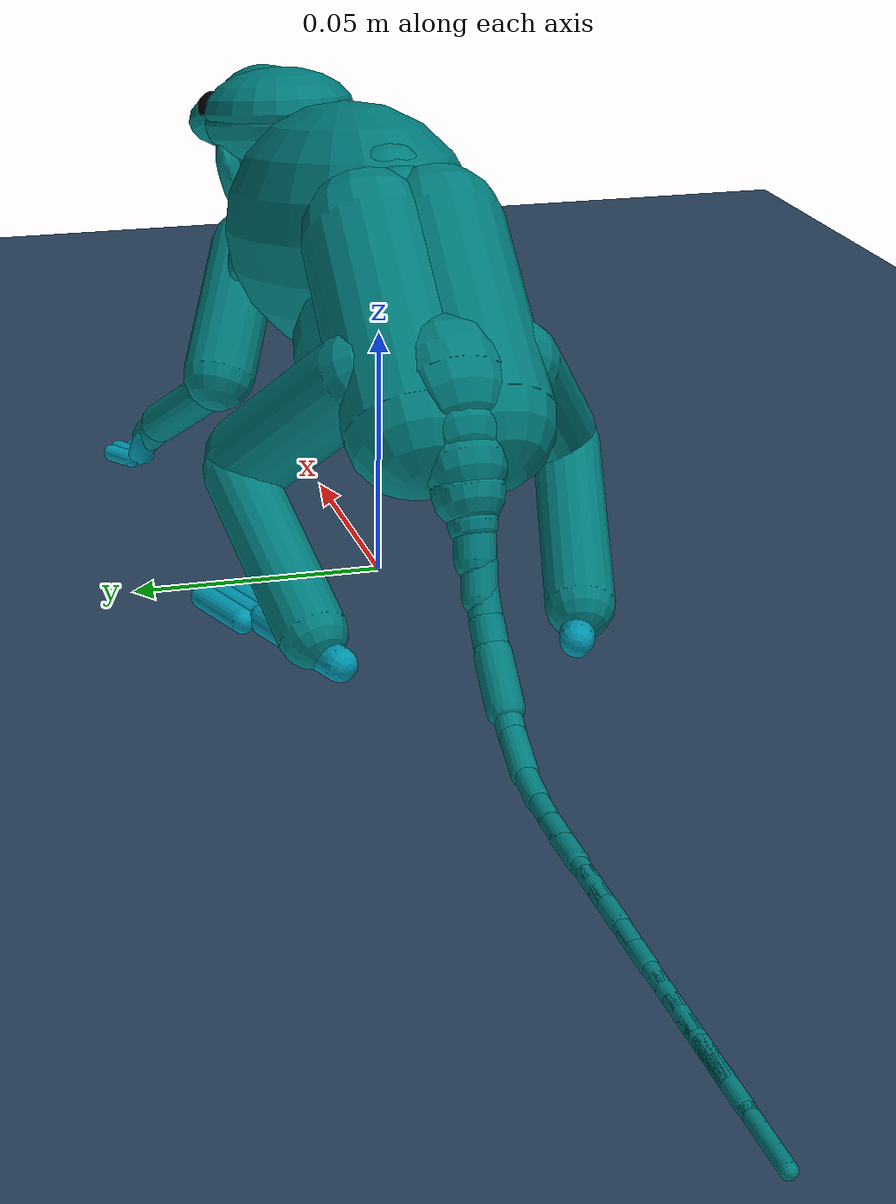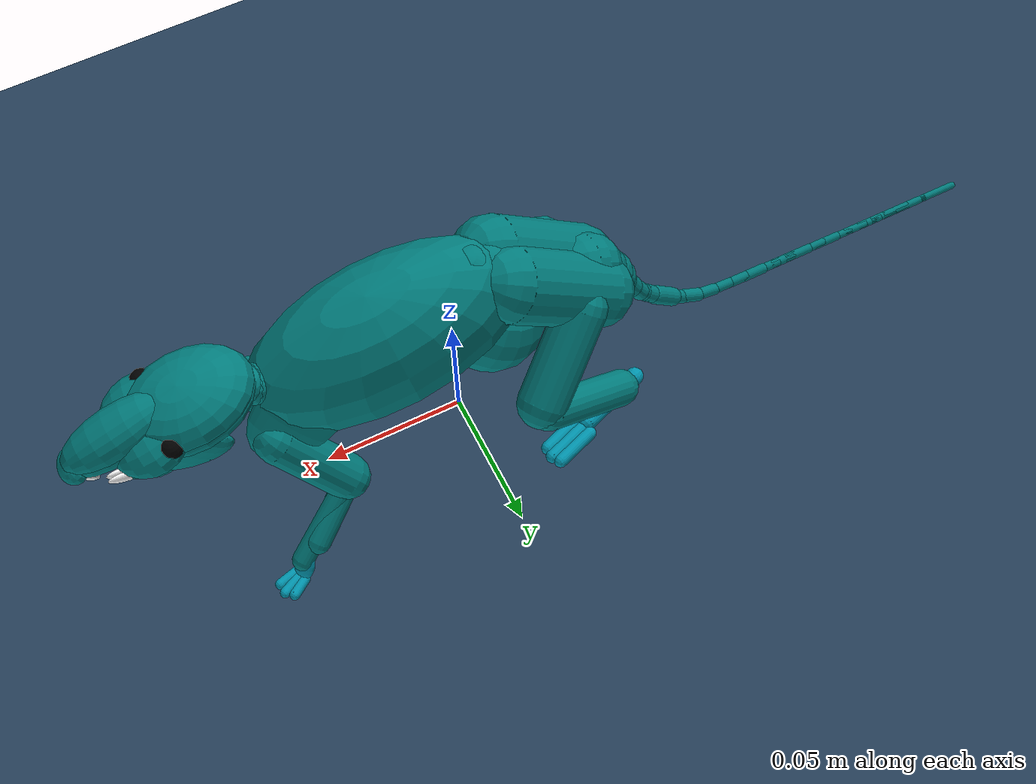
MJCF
<mujoco model="rat">
    <compiler angle="radian"/>
    <option timestep="0.002" solver="CG" iterations="16" ls_iterations="24"></option>
    <visual>
          <quality shadowsize="2048"/>
          <global offwidth="1920" offheight="1200" elevation="-20" azimuth="120"/>
        </visual>
    <default>
      <joint limited="true" solreflimit="0.01 1" solimplimit="0.99 0.9999 0.0001" armature="6e-07" damping="0.001"/>
      <geom friction="0.7 0.005 0.0001" solref="0.005 1"/>
      <site group="3" rgba="0 0 1 1"/>
      <general ctrllimited="true" ctrlrange="-1 1" forcelimited="false" gainprm="0.01"/>
      <default class="bone">
        <geom contype="0" conaffinity="0" group="0" rgba="0.5 0.5 0.5 1" density="1100.0"/>
      </default>
      <default class="collision">
        <geom contype="1" conaffinity="1" condim="1" group="2"/>
        <default class="collision_primitive">
          <geom type="capsule" group="2" rgba="0 0.5 0.5 1" density="500.0"/>
          <default class="collision_primitive_paw">
            <geom condim="3" priority="1" rgba="0 0.6 0.7 1" friction="1.5 0.005 0.0001"/>
          </default>
          <default class="nonself_collision_primitive">
            <geom contype="0" conaffinity="0"/>
          </default>
        </default>
      </default>
      <default class="collision_floor">
        <geom contype="0" conaffinity="1" condim="3"/>
      </default>
      <default class="atlas">
        <joint axis="0 -1 0" stiffness="0.002" range="-0.08726646259971647 0.7853981633974483" damping="0.002"/>
        <general gainprm="0.025"/>
      </default>
      <default class="mandible">
        <joint stiffness="0.002" range="-0.296705972839036 0.2617993877991494" springref="-0.314159265359" damping="0.002"/>
        <general gainprm="0.025"/>
      </default>
      <default class="hip">
        <joint armature="1e-05" damping="0.02"/>
        <general gainprm="0.2"/>
        <default class="hip_supinate">
          <joint range="-0.6981317007977318 0.5235987755982988"/>
        </default>
        <default class="hip_abduct">
          <joint range="-0.5235987755982988 1.047197551196598"/>
        </default>
        <default class="hip_extend">
          <joint range="-1.570796326794897 1.047197551196598"/>
          <general gainprm="0.3"/>
        </default>
      </default>
      <default class="knee">
        <joint range="-1.221730476396031 1.53588974175501" damping="0.005"/>
        <general gainprm="0.2"/>
      </default>
      <default class="ankle">
        <joint range="-0.1396263401595464 1.396263401595464" damping="0.003"/>
        <general gainprm="0.2"/>
      </default>
      <default class="toe">
        <joint range="0 0.8726646259971648" damping="0.001"/>
        <general gainprm="0.025"/>
      </default>
      <default class="scapula">
        <joint damping="0.005"/>
        <general gainprm="0.25"/>
        <default class="scapula_supinate">
          <joint pos="0 0.005000000000000001 0" range="-0.0174532925199433 0.1745329251994329"/>
        </default>
        <default class="scapula_abduct">
          <joint pos="0 0.005000000000000001 -0.01" range="-0.2617993877991494 0.2617993877991494"/>
        </default>
        <default class="scapula_extend">
          <joint pos="0 0 0" range="-0.03490658503988659 0.03490658503988659"/>
          <general gainprm="0.25"/>
        </default>
      </default>
      <default class="shoulder">
        <joint range="-1.308996938995747 0.8726646259971648" damping="0.005"/>
        <general gainprm="0.15"/>
      </default>
      <default class="shoulder_sup">
        <joint range="-0.05235987755982989 1.134464013796314" damping="0.005"/>
        <general gainprm="0.15"/>
      </default>
      <default class="elbow">
        <joint range="-1.308996938995747 0.6981317007977318" damping="0.003"/>
        <general gainprm="0.15"/>
      </default>
      <default class="wrist">
        <joint range="-0.3490658503988659 2.094395102393195" damping="0.002"/>
        <general gainprm="0.05"/>
      </default>
      <default class="finger">
        <joint range="0 1.570796326794897" damping="0.002"/>
        <general gainprm="0.025"/>
      </default>
      <default class="sensor">
        <site group="4"/>
      </default>
    </default>
    <visual>
      <quality shadowsize="2048"/>
    </visual>
    <statistic meansize="0.003"/>
    <asset>
      <texture name="grid" type="2d" builtin="checker" width="512" height="512" rgb1=".1 .2 .3" rgb2=".2 .3 .4"/>
      <material name="grid" texture="grid" texrepeat="1 1" texuniform="true" reflectance=".2"/>
    </asset>
    <worldbody>
      <geom name="floor" class="collision_floor" pos="0 0 -0.005" size="10 10 0.025" type="plane" material="grid"/>
      <body name="walker">
      <freejoint name="root"/>
      <body name="torso" pos="0.03099526054578288 2.058524937651458e-07 0.06508957263119967">
        <light name="tracking_light" mode="trackcom" pos="0 0 3"/>
        <camera name="close_profile" mode="trackcom" pos=".5 -.5 0.5" xyaxes="1 1 0 -1 1 2"/>
        <camera name="back" mode="trackcom" pos="-1 0 0.5" xyaxes="0 -1 0 1 0 2"/>
        <camera name="side" mode="trackcom" pos="0 -1 0.5" xyaxes="1 0 0 0 1 2"/>
        <camera name="side_alt" mode="trackcom" pos="0.5 -0.561 0.199" xyaxes="0.766 0.643 0.000 -0.162 0.192 0.968"/>
        <camera name="top" mode="trackcom" fovy="100.0" pos="0 0 1" zaxis="0 -0.2 1"/>
        <geom name="collision_torso" class="nonself_collision_primitive" type="ellipsoid" size="0.05 0.024 0.026" density="468.251260009" pos="-0.008200000000000001 0 0" euler="0 0.1745329251994329 0"/>
        <body name="vertebra_1" pos="-0.01917944366660853 -1.880335592758969e-07 0.01684645690649089">
          <geom name="vertebra_1_collision" class="nonself_collision_primitive" type="sphere" size="0.01" pos="0 0 -0.00164"/>
          <body name="vertebra_2" pos="-0.005629716335317717 2.594803588658443e-06 0.0005320922698783236">
            <geom name="vertebra_2_collision" class="nonself_collision_primitive" type="sphere" size="0.01" pos="0 0 -0.00164"/>
            <body name="vertebra_3" pos="-0.006517166672542409 -1.041062865360766e-05 -9.467218894820495e-05">
              <geom name="vertebra_3_collision" class="nonself_collision_primitive" type="sphere" size="0.01" pos="0 0 -0.00164"/>
              <body name="vertebra_4" pos="-0.006777704185187035 8.746101127162902e-06 -0.001299314772852475">
                <geom name="vertebra_4_collision" class="nonself_collision_primitive" type="sphere" size="0.01" pos="0 0 -0.00164"/>
                <body name="vertebra_5" pos="-0.006890066562303102 -6.204333649723221e-06 -0.002498064978782454">
                  <geom name="vertebra_5_collision" class="nonself_collision_primitive" type="sphere" size="0.01" pos="0 0 -0.00164"/>
                  <body name="vertebra_6" pos="-0.006185284434681512 5.254442128955049e-06 -0.003641122453027834">
                    <geom name="vertebra_6_collision" class="nonself_collision_primitive" type="sphere" size="0.01" pos="0 0 -0.00164"/>
                    <body name="pelvis" pos="-0.01307140919884396 3.513221433820909e-06 -0.008120982829772532">
                      <geom name="collision_pelvis_L" class="nonself_collision_primitive" size="0.013 0.021 0" density="1548.57736929" pos="-0.00082 0.00656 -0.00574" euler="0 0.8726646259971648 0"/>
                      <geom name="collision_pelvis_R" class="nonself_collision_primitive" size="0.013 0.021 0" density="1548.57736929" pos="-0.00082 -0.00656 -0.00574" euler="0 0.8726646259971648 0"/>
                      <geom name="collision_pelvis_gut" class="nonself_collision_primitive" type="ellipsoid" size="0.02 0.02 0.018" density="1548.57736929" pos="0.0205 0 -0.0164" euler="0 -0.5235987755982988 0"/>
                      <site name="hip_L" size="0.0022" pos="-0.004810292416764615 0.01149125410671547 -0.009887823301127264"/>
                      <site name="hip_R" size="0.0022" pos="-0.004810292416764615 -0.01149125410671547 -0.009887823301127264"/>
                      <body name="upper_leg_L" pos="-0.004810292416764615 0.01149125410671547 -0.009887823301127264">
                        <joint name="hip_L_supinate" class="hip_supinate" axis="-0 -0 1"/>
                        <joint name="hip_L_abduct" class="hip_abduct" axis="1 -0 -0"/>
                        <joint name="hip_L_extend" class="hip_extend" axis="0 1 0"/>
                        <site name="knee_L" type="cylinder" size="0.0006000000000000001 0.004" pos="0.01542264534586861 0.01747899805865108 -0.02570440890978101" zaxis="0 1 0"/>
                        <geom name="upper_leg_L0_collision" class="nonself_collision_primitive" size="0.008742403002230982 0.01748480600446196" density="1561.75550556" pos="0.008602524554195285 0.01075315569274411 -0.01290378683129293" euler="0.6108652381980153 -0.6981317007977318 0"/>
                        <body name="lower_leg_L" pos="0.01542264534586861 0.01747899805865108 -0.02570440890978101">
                          <joint name="knee_L" class="knee" axis="0.5 -1 0"/>
                          <site name="ankle_L" type="cylinder" size="0.0006000000000000001 0.0026" pos="-0.03230154033783406 -0.004727054683585472 -0.02205958852339887" zaxis="0 1 0"/>
                          <body name="foot_L" pos="-0.03230154033783406 -0.004727054683585472 -0.02205958852339887">
                            <joint name="ankle_L" class="ankle" axis="-0.3 1 0"/>
                            <geom name="foot_L_collision" class="collision_primitive_paw" size="0.003210712207833968 0.01238417565878816" density="2041.15978228" pos="0.008274464032760684 0.002256672008934731 -0.002256672008934731" euler="1.570796326794897 -1.221730476396031 0"/>
                            <site name="toe_L" type="cylinder" size="0.0006000000000000001 0.005000000000000001" pos="0.02109994311367263 0.007614327297542731 -0.002752166493087734" zaxis="0 1 0"/>
                            <body name="toe_L" pos="0.02109994311367263 0.007614327297542731 -0.002752166493087734">
                              <joint name="toe_L" class="toe" axis="0 1 0"/>
                              <geom name="toe_L0_collision" class="collision_primitive_paw" size="0.002383208424149982 0.007253243030021683" pos="0.008496656120882544 -0.0008496656120882542 0" euler="1.570796326794897 -1.221730476396031 0"/>
                              <geom name="toe_L1_collision" class="collision_primitive_paw" size="0.002383208424149982 0.007771331817880374" pos="0.008071823314838416 0.002548996836264763 0" euler="1.570796326794897 -1.221730476396031 0"/>
                              <geom name="toe_L2_collision" class="collision_primitive_paw" size="0.002383208424149982 0.007253243030021683" pos="0.006797324896706034 0.005522826478573654 0" euler="1.570796326794897 -1.221730476396031 0"/>
                              <site name="sole_L" class="sensor" type="box" size="0.006 0.004 0.002" pos="0.008200000000000001 0.00246 -0.00164" euler="0 0 0.3490658503988659"/>
                            </body>
                          </body>
                          <geom name="lower_leg_L_collision" class="nonself_collision_primitive" size="0.006556802251673236 0.01923328660490816" density="1302.86687267" pos="-0.01226339046929431 0.0001224792426221771 -0.01071813365303941" quat="0.5843939876140521 0.278581552273902 0.3900453953818352 0.6547828460754284"/>
                        </body>
                      </body>
                      <body name="upper_leg_R" pos="-0.004810292416764615 -0.01149125410671547 -0.009887823301127264">
                        <joint name="hip_R_supinate" class="hip_supinate" axis="0 0 -1"/>
                        <joint name="hip_R_abduct" class="hip_abduct" axis="-1 0 0"/>
                        <joint name="hip_R_extend" class="hip_extend" axis="0 1 0"/>
                        <site name="knee_R" type="cylinder" size="0.0006000000000000001 0.004" pos="0.01542264534586861 -0.01747899805865108 -0.02570440890978101" zaxis="0 1 0"/>
                        <geom name="upper_leg_R0_collision" class="nonself_collision_primitive" size="0.008742403002230982 0.01748480600446196" density="1561.75550556" pos="0.008602524554195285 -0.01075315569274411 -0.01290378683129293" euler="-0.6108652381980153 -0.6981317007977318 0"/>
                        <body name="lower_leg_R" pos="0.01542264534586861 -0.01747899805865108 -0.02570440890978101">
                          <joint name="knee_R" class="knee" axis="-0.5 -1 0"/>
                          <site name="ankle_R" type="cylinder" size="0.0006000000000000001 0.0026" pos="-0.03230154033783406 0.004727054683585472 -0.02205958852339887" zaxis="0 1 0"/>
                          <body name="foot_R" pos="-0.03230154033783406 0.004727054683585472 -0.02205958852339887">
                            <joint name="ankle_R" class="ankle" axis="0.3 1 0"/>
                            <geom name="foot_R_collision" class="collision_primitive_paw" size="0.003210712207833968 0.01238417565878816" density="2041.15978228" pos="0.008274464032760684 -0.002256672008934731 -0.002256672008934731" euler="1.570796326794897 1.221730476396031 0"/>
                            <site name="toe_R" type="cylinder" size="0.0006000000000000001 0.005000000000000001" pos="0.02109994311367263 -0.007614327297542731 -0.002752166493087734" zaxis="0 1 0"/>
                            <body name="toe_R" pos="0.02109994311367263 -0.007614327297542731 -0.002752166493087734">
                              <joint name="toe_R" class="toe" axis="0 1 0"/>
                              <geom name="toe_R0_collision" class="collision_primitive_paw" size="0.002383208424149982 0.007253243030021683" pos="0.008496656120882544 0.0008496656120882542 0" euler="1.570796326794897 1.221730476396031 0"/>
                              <geom name="toe_R1_collision" class="collision_primitive_paw" size="0.002383208424149982 0.007771331817880374" pos="0.008071823314838416 -0.002548996836264763 0" euler="1.570796326794897 1.221730476396031 0"/>
                              <geom name="toe_R2_collision" class="collision_primitive_paw" size="0.002383208424149982 0.007253243030021683" pos="0.006797324896706034 -0.005522826478573654 0" euler="1.570796326794897 1.221730476396031 0"/>
                              <site name="sole_R" class="sensor" type="box" size="0.006 0.004 0.002" pos="0.008200000000000001 -0.00246 -0.00164" euler="0 0 -0.3490658503988659"/>
                            </body>
                          </body>
                          <geom name="lower_leg_R_collision" class="nonself_collision_primitive" size="0.006556802251673236 0.01923328660490816" density="1302.86687267" pos="-0.01202896613332032 -0.0001615786954038913 -0.0105741369075766" quat="0.6564315036111004 0.3901417719765998 0.2779576926818845 0.5827749135856758"/>
                        </body>
                      </body>
                      <body name="vertebra_C1" pos="-0.01578991172983967 0 -0.01188162292618369">
                        <body name="vertebra_C2" pos="-0.003877053782139318 0 -0.004226431204517265">
                          <body name="vertebra_C3" pos="-0.003424026812590301 0 -0.004263077436113009">
                            <body name="vertebra_C4" pos="-0.003271874666658243 0 -0.004416838152219076">
                              <body name="vertebra_C5" pos="-0.003175974271018995 0 -0.004569340859213865">
                                <body name="vertebra_C6" pos="-0.003119193850481998 0 -0.004901355281343103">
                                  <body name="vertebra_C7" pos="-0.003215811269353427 0 -0.005644371131998142">
                                    <body name="vertebra_C8" pos="-0.003445853504479746 0 -0.005518181272185016">
                                      <body name="vertebra_C9" pos="-0.00428517277518055 0 -0.005115018280065306">
                                        <body name="vertebra_C10" pos="-0.004861545164642819 0 -0.004562186342662474">
                                          <body name="vertebra_C11" pos="-0.005374786984897312 0 -0.004364207168994159">
                                            <body name="vertebra_C12" pos="-0.006134478460615445 0 -0.003841502801916079">
                                              <body name="vertebra_C13" pos="-0.00689742745021331 0 -0.002592428185172008">
                                                <body name="vertebra_C14" pos="-0.006825037737343853 0 -0.0009088998932926352">
                                                  <body name="vertebra_C15" pos="-0.006526211069134326 0 -0.0003153309968866059">
                                                    <body name="vertebra_C16" pos="-0.006693909447912509 0 -0.0001384885270556547">
                                                      <body name="vertebra_C17" pos="-0.006485426246850028 0 -1.670467139216664e-05">
                                                        <body name="vertebra_C18" pos="-0.006207432181797656 0 1.825573131422967e-10">
                                                          <body name="vertebra_C19" pos="-0.006204259597825435 0 -8.201902227376357e-10">
                                                            <body name="vertebra_C20" pos="-0.006228376819942582 0 2.516520472814411e-06">
                                                              <body name="vertebra_C21" pos="-0.006117653417468877 0 -0.0001096641718318435">
                                                              <body name="vertebra_C22" pos="-0.006508107849533902 0 -1.311987483649039e-05">
                                                              <body name="vertebra_C23" pos="-0.006390755412623964 0 1.751401410207947e-09">
                                                              <body name="vertebra_C24" pos="-0.006180715195251588 0 -1.247135173292058e-09">
                                                              <body name="vertebra_C25" pos="-0.005968198951736014 0 1.379492349778272e-10">
                                                              <body name="vertebra_C26" pos="-0.005628676580141834 0 -1.365630198950016e-09">
                                                              <body name="vertebra_C27" pos="-0.005193120282271783 0 1.395692942078239e-09">
                                                              <body name="vertebra_C28" pos="-0.005036239104451245 0 5.073982356059771e-07">
                                                              <body name="vertebra_C29" pos="-0.004773896837169728 0 -6.205554570421282e-11">
                                                              <body name="vertebra_C30" pos="-0.00400535162294913 0 -4.197183187153738e-07">
                                                              <geom name="vertebra_C30_collision" class="nonself_collision_primitive" size="0.001297856215387583 0.00616252573672682 0.003456539940088987" density="507.157357703" pos="-3.413935800722356e-17 0 0" quat="0 0.7071067811865475 0 0.7071067811865476"/>
                                                              </body>
                                                              <geom name="vertebra_C29_collision" class="nonself_collision_primitive" size="0.001296832459047437 0.005963775183772668 0.002618767786771059" density="507.157357703" pos="2.275957200481571e-17 0 0" quat="0 0.7071067811865475 0 0.7071067811865476"/>
                                                              </body>
                                                              <geom name="vertebra_C28_collision" class="nonself_collision_primitive" size="0.001296832342632115 0.005764920220826752 0.002877779770642519" density="507.157357703" pos="-2.275957200481571e-17 0 0" quat="0 0.7071067811865475 0 0.7071067811865476"/>
                                                              </body>
                                                              <geom name="vertebra_C27_collision" class="nonself_collision_primitive" size="0.001379601657390594 0.005566182837355882 0.003061448689550161" density="507.157357703" pos="-2.275957200481571e-17 -5.689893001203927e-18 0" quat="0 0.7071067811865475 0 0.7071067811865476"/>
                                                              </body>
                                                              <geom name="vertebra_C26_collision" class="nonself_collision_primitive" size="0.001379605033434927 0.005367331657907926 0.003061428898945451" density="507.157357703" pos="0 0 0" quat="0 0.7071067811865475 0 0.7071067811865476"/>
                                                              </body>
                                                              <geom name="vertebra_C25_collision" class="nonself_collision_primitive" size="0.001379601657390594 0.005168589268578216 0.003478922415524721" density="507.157357703" pos="2.275957200481571e-17 5.689893001203927e-18 0" quat="0 0.7071067811865475 0 0.7071067811865476"/>
                                                              </body>
                                                              <geom name="vertebra_C24_collision" class="nonself_collision_primitive" size="0.00137960200663656 0.004969772635377012 0.003478918690234423" density="507.157357703" pos="0 5.689893001203927e-18 0" quat="0 0.7071067811865475 0 0.7071067811865476"/>
                                                              </body>
                                                              <geom name="vertebra_C23_collision" class="nonself_collision_primitive" size="0.001379598979838192 0.004770975443534553 0.00374077633023262" density="507.157357703" pos="0 0 0" quat="0 0.7071067811865475 0 0.7071067811865476"/>
                                                              </body>
                                                              <geom name="vertebra_C22_collision" class="nonself_collision_primitive" size="0.0013796032872051 0.004572178106172942 0.003740778425708413" density="507.157357703" pos="2.275957200481571e-17 0 0" quat="0 0.7071067811865475 0 0.7071067811865476"/>
                                                              </body>
                                                              <geom name="vertebra_C21_collision" class="nonself_collision_primitive" size="0.00153051526285708 0.004972128779627383 0.003853817004710436" density="507.157357703" pos="-2.275957200481571e-17 0 0" quat="0 0.7071067811865475 0 0.7071067811865476"/>
                                                              </body>
                                                              <geom name="vertebra_C20_collision" class="nonself_collision_primitive" size="0.001498286379501224 0.005176536360522732 0.003596158232539892" density="507.157357703" pos="0 2.844946500601963e-18 0" quat="0 0.7071067811865475 0 0.7071067811865476"/>
                                                            </body>
                                                            <geom name="vertebra_C19_collision" class="nonself_collision_primitive" size="0.00163395400159061 0.005171378143131733 0.003596235066652298" density="507.157357703" pos="0 0 0" quat="0 0.7071067811865475 0 0.7071067811865476"/>
                                                          </body>
                                                          <geom name="vertebra_C18_collision" class="nonself_collision_primitive" size="0.001633956097066402 0.004912774951662868 0.003596230177208781" density="507.157357703" pos="-4.551914400963142e-17 3.556183125752454e-19 0" quat="0 0.7071067811865475 0 0.7071067811865476"/>
                                                        </body>
                                                        <geom name="vertebra_C17_collision" class="nonself_collision_primitive" size="0.001633955631405115 0.004654210468288511 0.00359621923416853" density="507.157357703" pos="4.551914400963142e-17 3.556183125752454e-19 0" quat="0 0.7071067811865475 0 0.7071067811865476"/>
                                                      </body>
                                                      <geom name="vertebra_C16_collision" class="nonself_collision_primitive" size="0.00187811441719532 0.004395640251459554 0.003866892773658037" density="507.157357703" pos="4.551914400963142e-17 0 0" quat="0 0.7071067811865475 0 0.7071067811865476"/>
                                                    </body>
                                                    <geom name="vertebra_C15_collision" class="nonself_collision_primitive" size="0.001845342689193785 0.004137067589908838 0.003863777499645948" density="507.157357703" pos="0 -2.844946500601963e-18 0" quat="-3.048411496515643e-15 0.6991848455046811 3.117107305228081e-15 0.7149409428873096"/>
                                                  </body>
                                                  <geom name="vertebra_C14_collision" class="nonself_collision_primitive" size="0.00184506073128432 0.003878506540786475 0.003863667836412787" density="507.157357703" pos="-4.551914400963142e-17 -4.267419750902945e-18 0" quat="0 0.6866112770928985 0 0.7270247273434782"/>
                                                </body>
                                                <geom name="vertebra_C13_collision" class="nonself_collision_primitive" size="0.002090706257149577 0.003959977824706584 0.004278565291315317" density="507.157357703" pos="-1.137978600240785e-17 0 1.778091562876227e-19" quat="1.892164903646171e-16 0.6293932092262298 -2.336181429597261e-16 0.7770869888113604"/>
                                              </body>
                                              <geom name="vertebra_C12_collision" class="nonself_collision_primitive" size="0.002433547750115395 0.004146181046962738 0.004279083106666803" density="507.157357703" pos="0 0 0" quat="1.235560731911126e-17 0.5080793265726891 -7.288463628123299e-18 0.8613102796956755"/>
                                            </body>
                                            <geom name="vertebra_C11_collision" class="nonself_collision_primitive" size="0.002499659545719624 0.003896944806911051 0.0042794244363904" density="507.157357703" pos="-2.275957200481571e-17 0 0" quat="8.0408085539503e-17 0.4349444185915732 -3.883920751947562e-17 0.9004573020060631"/>
                                          </body>
                                          <geom name="vertebra_C10_collision" class="nonself_collision_primitive" size="0.003421195782721043 0.005196776997763664 0.003937873989343643" density="507.157357703" pos="0 0 -1.422473250300982e-18" quat="6.606927199194023e-17 0.404822478038031 -2.925028864881283e-17 0.914395298147988"/>
                                        </body>
                                        <geom name="vertebra_C9_collision" class="nonself_collision_primitive" size="0.003130586817860603 0.004494897730182856 0.003937420435249805" density="507.157357703" pos="0 0 -2.844946500601963e-18" quat="0.9339363308955284 -2.188685129702187e-17 0.3574394072194587 5.718710691193161e-17"/>
                                      </body>
                                      <geom name="vertebra_C8_collision" class="nonself_collision_primitive" size="0.003015818307176232 0.003957028646254912 0.003936874680221081" density="507.157357703" pos="0 0 -2.844946500601963e-18" quat="0.9557562961254608 -1.801208397451436e-17 0.2941596546376485 5.852319444074877e-17"/>
                                    </body>
                                    <geom name="vertebra_C7_collision" class="nonself_collision_primitive" size="0.003256943542510271 0.004638898652046919 0.003752123331651092" density="507.157357703" pos="0 0 0" quat="-0.9587181623873691 -0.02864387142163538 -0.2629262253293439 0.1044452668751926"/>
                                  </body>
                                  <geom name="vertebra_C6_collision" class="nonself_collision_primitive" size="0.003849131055176258 0.004441792552825063 0.003917634021490812" density="507.157357703" pos="0 0 -5.689893001203927e-18" quat="-0.9684724633255426 -0.0201653665451908 -0.2338356379719502 0.08351850206094803"/>
                                </body>
                                <geom name="vertebra_C5_collision" class="nonself_collision_primitive" size="0.004545329604297876 0.003776637255214155 0.003525696694850922" density="507.157357703" pos="0 0 0" quat="0.959555122982002 -1.723817788817547e-17 0.2815208091047534 5.875580549826768e-17"/>
                              </body>
                              <geom name="vertebra_C4_collision" class="nonself_collision_primitive" size="0.006652826443314552 0.003851699293591082 0.004260519985109568" density="507.157357703" pos="0 0 -5.689893001203927e-18" quat="0.6698964656770412 0.2263597253784533 0.2263597253784533 0.6698964656770412"/>
                            </body>
                            <geom name="vertebra_C3_collision" class="nonself_collision_primitive" size="0.007895978167653084 0.00409743981435895 0.00449473550543189" density="507.157357703" pos="0 0 5.689893001203927e-18" quat="0.658413368499565 0.2578601097127201 0.2578601097127201 0.658413368499565"/>
                          </body>
                          <geom name="vertebra_C2_collision" class="nonself_collision_primitive" size="0.008360366337001324 0.003506151144392788 0.005264153238385916" density="507.157357703" pos="0 0 0" quat="0.6165945006583455 0.3461375763448482 0.3461375763448482 0.6165945006583455"/>
                        </body>
                        <geom name="vertebra_C1_collision" class="nonself_collision_primitive" size="0.01096499338746071 0.002370424568653107 0.005434373859316111" density="507.157357703" pos="0 -2.778268066994105e-21 0" quat="0.5772408551843025 0.3506607415056362 0.3240276763775721 0.662447057819841"/>
                      </body>
                    </body>
                  </body>
                </body>
              </body>
            </body>
          </body>
        </body>
        <body name="vertebra_cervical_5" pos="0.02770906497757163 1.182614387058484e-05 -0.001000314910384547">
          <geom name="vertebra_cervical_5_collision" class="nonself_collision_primitive" type="sphere" size="0.008999999999999999" density="300.0"/>
          <body name="vertebra_cervical_4" pos="0.002409040600051545 -1.201496970707005e-05 0.0008095769938857078">
            <geom name="vertebra_cervical_4_collision" class="nonself_collision_primitive" type="sphere" size="0.008399999999999999" density="300.0"/>
            <body name="vertebra_cervical_3" pos="0.002150279591154259 1.208154055769177e-10 0.0009415267844258756">
              <geom name="vertebra_cervical_3_collision" class="nonself_collision_primitive" type="sphere" size="0.007799999999999999" density="300.0"/>
              <body name="vertebra_cervical_2" pos="0.001899960058888792 1.283979720589725e-10 0.0008747620831573993">
                <geom name="vertebra_cervical_2_collision" class="nonself_collision_primitive" type="sphere" size="0.007199999999999998" density="300.0"/>
                <body name="vertebra_cervical_1" pos="0.001777511633561411 4.522127641084884e-10 0.0009350735272135867">
                  <geom name="vertebra_cervical_1_collision" class="nonself_collision_primitive" type="sphere" size="0.006599999999999998" density="300.0"/>
                  <body name="vertebra_axis" pos="0.001882316665146777 -1.7566504879529e-06 0.001705860606049519">
                    <geom name="vertebra_axis_collision" class="nonself_collision_primitive" type="sphere" size="0.005999999999999998" density="300.0"/>
                    <body name="vertebra_atlant" pos="0.002452182159178586 1.756985238485304e-06 0.001369554727844564">
                      <geom name="vertebra_atlant_collision" class="nonself_collision_primitive" type="sphere" size="0.005399999999999999" density="300.0"/>
                      <body name="skull" pos="0.02595506911814188 4.202354324468666e-09 0.001770509875790047">
                        <geom name="skull_0_collision" class="nonself_collision_primitive" type="ellipsoid" size="0.02209522800796732 0.01669565217391304 0.01" density="703.10773841" pos="-0.0090590434832666 0 0.00082" euler="0 0.1745329251994329 0"/>
                        <geom name="skull_0b_collision" class="nonself_collision_primitive" type="ellipsoid" size="0.02209522800796732 0.01669565217391304 0.01" density="1.40621547682" pos="-0.0090590434832666 0 0.00328" euler="0 0.1745329251994329 0"/>
                        <geom name="skull_F_collision" class="nonself_collision_primitive" type="ellipsoid" size="0.007180949102589378 0.008904347826086957 0.02" density="703.10773841" pos="0.01449446957322656 0 -0.00082" euler="0 1.919862177193763 0"/>
                        <geom name="skull_Fb_collision" class="nonself_collision_primitive" type="ellipsoid" size="0.007180949102589378 0.008904347826086957 0.02" density="1.40621547682" pos="0.01449446957322656 0 0.00164" euler="0 1.919862177193763 0"/>
                        <geom name="skull_L_collision" class="nonself_collision_primitive" type="ellipsoid" size="0.007180949102589378 0.01335652173913044 0.014" density="703.10773841" pos="0.005435426089959959 0.004563478260869566 -0.00082" euler="0 1.919862177193763 0"/>
                        <geom name="eye_L_collision" class="nonself_collision_primitive" type="sphere" group="1" size="0.004 0.004 0.004" rgba="0 0 0 1" pos="0.001104761400398366 0.0128 0.0025"/>
                        <geom name="skull_R_collision" class="nonself_collision_primitive" type="ellipsoid" size="0.007180949102589378 0.01335652173913044 0.014" density="703.10773841" pos="0.005435426089959959 -0.004563478260869566 -0.00082" euler="0 1.919862177193763 0"/>
                        <geom name="eye_R_collision" class="nonself_collision_primitive" type="sphere" group="1" size="0.004 0.004 0.004" rgba="0 0 0 1" pos="0.001104761400398366 -0.0128 0.0025"/>
                        <geom name="skull_P0_collision" class="nonself_collision_primitive" type="box" size="0.006628568402390195 0.006233043478260871 0.0016" density="703.10773841" pos="0.00181180869665332 0 -0.00574"/>
                        <geom name="skull_P1_collision" class="nonself_collision_primitive" type="box" size="0.004419045601593462 0.00400695652173913 0.0012" density="703.10773841" pos="0.00634133043828662 0 -0.00574"/>
                        <geom name="skull_P2_collision" class="nonself_collision_primitive" type="box" size="0.001104761400398366 0.003339130434782609 0.0008" density="703.10773841" pos="0.00860609130910327 0 -0.00574"/>
                        <geom name="skull_T0_collision" class="nonself_collision_primitive" type="ellipsoid" size="0.00552380700199183 0.006678260869565218 0.004" density="703.10773841" pos="0.02989484349477978 0 -0.00656" euler="0 0.5235987755982988 0"/>
                        <geom name="skull_T1_collision" class="nonself_collision_primitive" type="ellipsoid" group="1" size="0.002209522800796731 0.001669565217391304 0.007000000000000001" rgba="1 1 1 1" density="703.10773841" pos="0.02808303479812645 0.000912695652173913 -0.0123" euler="0 0.5235987755982988 0"/>
                        <geom name="skull_T2_collision" class="nonself_collision_primitive" type="ellipsoid" group="1" size="0.002209522800796731 0.001669565217391304 0.007000000000000001" rgba="1 1 1 1" density="703.10773841" pos="0.02808303479812645 -0.000912695652173913 -0.0123" euler="0 0.5235987755982988 0"/>
                        <joint name="atlas" class="atlas" pos="-0.02843583549004804 0 0"/>
                        <site name="head" class="sensor" type="box" size="0.002 0.002 0.002"/>
                        <camera name="egocentric" fovy="80.0" pos="0.01 0 0.005" euler="0 -1.570796326794897 -1.570796326794897"/>
                        <body name="jaw" pos="0.0004529521741633299 -1.588797783766933e-08 -0.0164" euler="0 0.2617993877991494 0">
                          <geom name="jaw_back_collision" class="nonself_collision_primitive" type="ellipsoid" size="0.01215237540438202 0.01335652173913044 0.007000000000000001" density="314.057274977" pos="-0.01087085217991992 0 0.00205" euler="0 0.9599310885968813 0"/>
                          <geom name="jaw_F_collision" class="nonself_collision_primitive" type="ellipsoid" size="0.003314284201195097 0.006678260869565218 0.012" density="314.057274977" pos="0.002717713044979979 0 -0.00492" euler="0 1.832595714594046 0"/>
                          <geom name="jaw_L_collision" class="nonself_collision_primitive" type="ellipsoid" size="0.00994285260358529 0.003895652173913044 0.016" density="314.057274977" pos="-0.005435426089959959 0.008214260869565216 0.00082" euler="-0.6981317007977318 2.181661564992912 0.5235987755982988"/>
                          <geom name="jaw_R_collision" class="nonself_collision_primitive" type="ellipsoid" size="0.00994285260358529 0.003895652173913044 0.016" density="314.057274977" pos="-0.005435426089959959 -0.008214260869565216 0.00082" euler="0.6981317007977318 2.181661564992912 -0.5235987755982988"/>
                          <geom name="jaw_T0_collision" class="nonself_collision_primitive" type="ellipsoid" size="0.003314284201195097 0.003339130434782609 0.006" density="314.057274977" pos="0.01268266087657324 0 -0.00574" euler="0 1.221730476396031 0"/>
                          <geom name="jaw_T1_collision" class="nonself_collision_primitive" type="ellipsoid" group="1" size="0.002209522800796731 0.001335652173913044 0.007000000000000001" rgba="1 1 1 1" density="314.057274977" pos="0.01721218261820654 0.000912695652173913 -0.0041" euler="0 1.134464013796314 0"/>
                          <geom name="jaw_T2_collision" class="nonself_collision_primitive" type="ellipsoid" group="1" size="0.002209522800796731 0.001335652173913044 0.007000000000000001" rgba="1 1 1 1" density="314.057274977" pos="0.01721218261820654 -0.000912695652173913 -0.0041" euler="0 1.134464013796314 0"/>
                          <geom name="jaw_P0_collision" class="nonself_collision_primitive" type="box" size="0.006628568402390195 0.006233043478260871 0.0016" density="314.057274977" pos="-0.002717713044979979 0 0.00082" euler="0 0.9599310885968813 0"/>
                          <geom name="jaw_P1_collision" class="nonself_collision_primitive" type="box" size="0.004419045601593462 0.004897391304347827 0.001" density="314.057274977" pos="0 0 -0.0009840000000000001" euler="0 0.5235987755982988 0"/>
                          <geom name="jaw_P2_collision" class="nonself_collision_primitive" type="box" size="0.004419045601593462 0.00400695652173913 0.001" density="314.057274977" pos="0.002717713044979979 0 -0.002296" euler="0 0.4363323129985824 0"/>
                          <geom name="jaw_P3_collision" class="nonself_collision_primitive" type="box" size="0.003314284201195097 0.002893913043478261 0.0006000000000000001" density="314.057274977" pos="0.00471070261129863 0 -0.00287" euler="0 0.2617993877991494 0"/>
                          <joint name="mandible" class="mandible" pos="-0.0185 0 0.004" axis="0 1 0"/>
                        </body>
                      </body>
                    </body>
                  </body>
                </body>
              </body>
            </body>
          </body>
        </body>
        <body name="scapula_L" pos="0.00656 0.00164 0.01148">
          <joint name="scapula_L_supinate" class="scapula_supinate" pos="0 -0.005000000000000001 0" axis="-0 -0 1"/>
          <joint name="scapula_L_abduct" class="scapula_abduct" pos="0 -0.005000000000000001 -0.01" axis="1 -0 -0"/>
          <joint name="scapula_L_extend" class="scapula_extend" pos="0 0 0" axis="0.3 1 0"/>
          <site name="shoulder_L" size="0.002" pos="0.0287 0.00984 -0.02542"/>
          <body name="upper_arm_L" pos="0.0287 0.00984 -0.02542">
            <joint name="shoulder_L" class="shoulder" axis="0 1 0"/>
            <joint name="shoulder_sup_L" class="shoulder_sup" axis="0 0 -1"/>
            <site name="elbow_L" type="cylinder" size="0.0006000000000000001 0.004" pos="-0.01593120836133218 0.01035528543486592 -0.02230369170586505" zaxis="0 1 0.2"/>
            <body name="lower_arm_L" pos="-0.01593120836133218 0.01035528543486592 -0.02230369170586505">
              <joint name="elbow_L" class="elbow" axis="0 1 0.2"/>
              <site name="wrist_L" type="cylinder" size="0.0008 0.0034" pos="0.02160265376479308 0.01260154802946263 -0.01980243261772699" zaxis="0 1 0"/>
              <body name="hand_L" pos="0.02160265376479308 0.01260154802946263 -0.01980243261772699">
                <joint name="wrist_L" class="wrist" axis="0.6 -1 0"/>
                <geom name="hand_L_collision" class="collision_primitive_paw" type="ellipsoid" size="0.006470191588681792 0.003697252336389595 0.002218351401833757" density="2531.78122831" pos="0.001515873457919734 0.0007579367289598669 -0.004547620373759201" euler="-0.6981317007977318 0.8726646259971648 0.7853981633974483"/>
                <site name="finger_L" type="cylinder" size="0.0006000000000000001 0.005000000000000001" pos="0.003031746915839468 0.001515873457919734 -0.008337304018558537" zaxis="-0.2 1 0"/>
                <body name="finger_L" pos="0.003031746915839468 0.001515873457919734 -0.008337304018558537">
                  <joint name="finger_L" class="finger" axis="-0.5 1 0"/>
                  <geom name="finger_L0_collision" class="collision_primitive_paw" size="0.001848626168194797 0.003235095794340896" pos="0.004926588738239136 -0.0007579367289598669 0" euler="1.570796326794897 -1.308996938995747 0"/>
                  <geom name="finger_L1_collision" class="collision_primitive_paw" size="0.001848626168194797 0.003697252336389595" pos="0.004547620373759201 0.001894841822399667 0" euler="1.570796326794897 -1.099557428756428 0"/>
                  <geom name="finger_L2_collision" class="collision_primitive_paw" size="0.001848626168194797 0.003235095794340896" pos="0.002652778551359534 0.003789683644799335 0" euler="1.570796326794897 -0.9599310885968813 0"/>
                  <site name="palm_L" class="sensor" type="box" size="0.004 0.004 0.002" pos="0.00492 0.00246 -0.00164" euler="0 0 0.4886921905584123"/>
                </body>
              </body>
              <geom name="radius_L_collision" class="nonself_collision_primitive" size="0.003732165792697991 0.01591658941003555" pos="0.01150545467526729 0.006850732667129763 -0.01222632491350886" quat="0.02376493230846292 0.7917721441518218 0.4232293467931716 0.4397829234413568"/>
              <geom name="ulna_L_collision" class="nonself_collision_primitive" size="0.004390783285527048 0.01317234985658114" pos="0.006749764363547758 0.004992418652633264 -0.009489848452311813" quat="0.01282244452041863 0.7446249872782607 0.4776065607195328 0.4661128472752391"/>
            </body>
            <geom name="humerus_L_collision" class="nonself_collision_primitive" size="0.007771321151869356 0.01554264230373871" pos="-0.007743344450064287 0.005787978890072665 -0.01198335273722202" quat="0.472560999180163 0.3450082805420177 0.0007016050154913519 0.8109592444517103"/>
          </body>
          <geom name="scapula_L_collision" class="nonself_collision_primitive" type="ellipsoid" size="0.005005370825529099 0.01463182792067528 0.02431104406714439" density="513.564612303" pos="0.01757062251063465 0.008636916680112587 -0.01522952249267691" quat="0.1844194062696375 0.7692222855376651 0.4740322845517004 0.3867556738123709"/>
        </body>
        <body name="scapula_R" pos="0.00656 -0.00164 0.01148">
          <joint name="scapula_R_supinate" class="scapula_supinate" pos="0 0.005000000000000001 0" axis="0 0 -1"/>
          <joint name="scapula_R_abduct" class="scapula_abduct" pos="0 0.005000000000000001 -0.01" axis="-1 0 0"/>
          <joint name="scapula_R_extend" class="scapula_extend" pos="0 0 0" axis="-0.3 1 0"/>
          <site name="shoulder_R" size="0.002" pos="0.0287 -0.00984 -0.02542"/>
          <body name="upper_arm_R" pos="0.0287 -0.00984 -0.02542">
            <joint name="shoulder_R" class="shoulder" axis="0 1 0"/>
            <joint name="shoulder_sup_R" class="shoulder_sup" axis="-0 -0 1"/>
            <site name="elbow_R" type="cylinder" size="0.0006000000000000001 0.004" pos="-0.01593120836133218 -0.01035528543486592 -0.02230369170586505" zaxis="0 1 -0.2"/>
            <body name="lower_arm_R" pos="-0.01593120836133218 -0.01035528543486592 -0.02230369170586505">
              <joint name="elbow_R" class="elbow" axis="0 1 -0.2"/>
              <site name="wrist_R" type="cylinder" size="0.0008 0.0034" pos="0.02160265376479308 -0.01260154802946263 -0.01980243261772699" zaxis="0 1 0"/>
              <body name="hand_R" pos="0.02160265376479308 -0.01260154802946263 -0.01980243261772699">
                <joint name="wrist_R" class="wrist" axis="-0.6 -1 0"/>
                <geom name="hand_R_collision" class="collision_primitive_paw" type="ellipsoid" size="0.006470191588681792 0.003697252336389595 0.002218351401833757" density="2531.78122831" pos="0.001515873457919734 -0.0007579367289598669 -0.004547620373759201" euler="0.6981317007977318 0.8726646259971648 -0.7853981633974483"/>
                <site name="finger_R" type="cylinder" size="0.0006000000000000001 0.005000000000000001" pos="0.003031746915839468 -0.001515873457919734 -0.008337304018558537" zaxis="0.2 1 0"/>
                <body name="finger_R" pos="0.003031746915839468 -0.001515873457919734 -0.008337304018558537">
                  <joint name="finger_R" class="finger" axis="0.5 1 0"/>
                  <geom name="finger_R0_collision" class="collision_primitive_paw" size="0.001848626168194797 0.003235095794340896" pos="0.004926588738239136 0.0007579367289598669 0" euler="1.570796326794897 1.308996938995747 0"/>
                  <geom name="finger_R1_collision" class="collision_primitive_paw" size="0.001848626168194797 0.003697252336389595" pos="0.004547620373759201 -0.001894841822399667 0" euler="1.570796326794897 1.099557428756428 0"/>
                  <geom name="finger_R2_collision" class="collision_primitive_paw" size="0.001848626168194797 0.003235095794340896" pos="0.002652778551359534 -0.003789683644799335 0" euler="1.570796326794897 0.9599310885968813 0"/>
                  <site name="palm_R" class="sensor" type="box" size="0.004 0.004 0.002" pos="0.00492 -0.00246 -0.00164" euler="0 0 -0.4886921905584123"/>
                </body>
              </body>
              <geom name="radius_R_collision" class="nonself_collision_primitive" size="0.003732165792697991 0.01591658941003555" pos="0.01150546139578159 -0.0068511746740596 -0.01222632995360402" quat="0.4397828585901176 0.423230473256099 0.7917715587074765 0.02376557635859348"/>
              <geom name="ulna_R_collision" class="nonself_collision_primitive" size="0.004390783285527048 0.01317234985658114" pos="0.006749766930753688 -0.004992858736000205 -0.009489848507155575" quat="0.4661127828257156 0.4776067795325061 0.7446248854693838 0.01282254930824632"/>
            </body>
            <geom name="humerus_R_collision" class="nonself_collision_primitive" size="0.007771321151869356 0.01554264230373871" pos="-0.007743341889514446 -0.005788347560550173 -0.01198335067124012" quat="0.8109593935310486 0.0007013948082913995 0.3450082795040448 0.4725607444157158"/>
          </body>
          <geom name="scapula_R_collision" class="nonself_collision_primitive" type="ellipsoid" size="0.005005370266735553 0.01463183127343655 0.02431103959679604" density="513.564646393" pos="0.01757062018850453 -0.008637295267367218 -0.01522952062810994" quat="0.3867556972129688 0.4740321312040688 0.7692223496423682 0.1844194839763772"/>
        </body>
      </body>
      </body>
    </worldbody>
    <contact>
      <exclude name="pelvis:vertebra_C2" body1="pelvis" body2="vertebra_C2"/>
      <exclude name="pelvis:vertebra_C3" body1="pelvis" body2="vertebra_C3"/>
      <exclude name="pelvis:vertebra_C4" body1="pelvis" body2="vertebra_C4"/>
      <exclude name="vertebra_C1:vertebra_C3" body1="vertebra_C1" body2="vertebra_C3"/>
      <exclude name="vertebra_C1:vertebra_C4" body1="vertebra_C1" body2="vertebra_C4"/>
      <exclude name="vertebra_C2:vertebra_C4" body1="vertebra_C2" body2="vertebra_C4"/>
      <exclude name="vertebra_C3:vertebra_C5" body1="vertebra_C3" body2="vertebra_C5"/>
      <exclude name="vertebra_C4:vertebra_C6" body1="vertebra_C4" body2="vertebra_C6"/>
      <exclude name="vertebra_C5:vertebra_C7" body1="vertebra_C5" body2="vertebra_C7"/>
      <exclude name="vertebra_axis:skull" body1="vertebra_axis" body2="skull"/>
      <exclude name="pelvis:vertebra_C5" body1="pelvis" body2="vertebra_C5"/>
      <exclude name="pelvis:vertebra_C6" body1="pelvis" body2="vertebra_C6"/>
      <exclude name="vertebra_C2:vertebra_C5" body1="vertebra_C2" body2="vertebra_C5"/>
      <exclude name="vertebra_C3:vertebra_C6" body1="vertebra_C3" body2="vertebra_C6"/>
      <exclude name="vertebra_C4:vertebra_C7" body1="vertebra_C4" body2="vertebra_C7"/>
      <exclude name="upper_arm_L:upper_arm_R" body1="upper_arm_L" body2="upper_arm_R"/>
      <exclude name="upper_leg_L:vertebra_C1" body1="upper_leg_L" body2="vertebra_C1"/>
      <exclude name="upper_leg_L:vertebra_C2" body1="upper_leg_L" body2="vertebra_C2"/>
      <exclude name="upper_leg_R:vertebra_C1" body1="upper_leg_R" body2="vertebra_C1"/>
      <exclude name="upper_leg_R:vertebra_C2" body1="upper_leg_R" body2="vertebra_C2"/>
      <exclude name="vertebra_cervical_1:skull" body1="vertebra_cervical_1" body2="skull"/>
      <exclude name="vertebra_cervical_2:skull" body1="vertebra_cervical_2" body2="skull"/>
      <exclude name="upper_arm_L:torso" body1="upper_arm_L" body2="torso"/>
      <exclude name="upper_arm_R:torso" body1="upper_arm_R" body2="torso"/>
      <exclude name="lower_leg_L:pelvis" body1="lower_leg_L" body2="pelvis"/>
      <exclude name="lower_leg_R:pelvis" body1="lower_leg_R" body2="pelvis"/>
    </contact>
    <actuator>
      <general name="hip_L_supinate" forcerange="-0.2 0.2" joint="hip_L_supinate" dyntype="filter" biastype="affine" dynprm="0.04" gainprm="0.2443460952792061" biasprm="-0.0349065850398866 -0.4"/>
      <general name="hip_L_abduct" forcerange="-0.2 0.2" joint="hip_L_abduct" dyntype="filter" biastype="affine" dynprm="0.04" gainprm="0.3141592653589793" biasprm="0.1047197551196598 -0.4"/>
      <general name="hip_L_extend" forcerange="-0.3 0.3" joint="hip_L_extend" dyntype="filter" biastype="affine" dynprm="0.04" gainprm="0.7853981633974482" biasprm="-0.1570796326794897 -0.6"/>
      <general name="knee_L" forcerange="-0.2 0.2" joint="knee_L" dyntype="filter" biastype="affine" dynprm="0.04" gainprm="0.5515240436302081" biasprm="0.06283185307179587 -0.4"/>
      <general name="ankle_L" forcerange="-0.2 0.2" joint="ankle_L" dyntype="filter" biastype="affine" dynprm="0.04" gainprm="0.307177948351002" biasprm="0.2513274122871835 -0.4"/>
      <general name="toe_L" forcerange="-0.025 0.025" joint="toe_L" dyntype="filter" biastype="affine" dynprm="0.04" gainprm="0.02181661564992912" biasprm="0.02181661564992912 -0.05"/>
      <general name="hip_R_supinate" forcerange="-0.2 0.2" joint="hip_R_supinate" dyntype="filter" biastype="affine" dynprm="0.04" gainprm="0.2443460952792061" biasprm="-0.0349065850398866 -0.4"/>
      <general name="hip_R_abduct" forcerange="-0.2 0.2" joint="hip_R_abduct" dyntype="filter" biastype="affine" dynprm="0.04" gainprm="0.3141592653589793" biasprm="0.1047197551196598 -0.4"/>
      <general name="hip_R_extend" forcerange="-0.3 0.3" joint="hip_R_extend" dyntype="filter" biastype="affine" dynprm="0.04" gainprm="0.7853981633974482" biasprm="-0.1570796326794897 -0.6"/>
      <general name="knee_R" forcerange="-0.2 0.2" joint="knee_R" dyntype="filter" biastype="affine" dynprm="0.04" gainprm="0.5515240436302081" biasprm="0.06283185307179587 -0.4"/>
      <general name="ankle_R" forcerange="-0.2 0.2" joint="ankle_R" dyntype="filter" biastype="affine" dynprm="0.04" gainprm="0.307177948351002" biasprm="0.2513274122871835 -0.4"/>
      <general name="toe_R" forcerange="-0.025 0.025" joint="toe_R" dyntype="filter" biastype="affine" dynprm="0.04" gainprm="0.02181661564992912" biasprm="0.02181661564992912 -0.05"/>
      <general name="atlas" forcerange="-0.025 0.025" joint="atlas" dyntype="filter" biastype="affine" dynprm="0.04" gainprm="0.02181661564992912" biasprm="0.0174532925199433 -0.05"/>
      <general name="mandible" forcerange="-0.025 0.025" joint="mandible" dyntype="filter" biastype="affine" dynprm="0.04" gainprm="0.01396263401595464" biasprm="-0.000872664625997166 -0.05"/>
      <general name="scapula_L_supinate" forcerange="-0.25 0.25" joint="scapula_L_supinate" dyntype="filter" biastype="affine" dynprm="0.04" gainprm="0.04799655442984406" biasprm="0.03926990816987241 -0.5"/>
      <general name="scapula_L_abduct" forcerange="-0.25 0.25" joint="scapula_L_abduct" dyntype="filter" biastype="affine" dynprm="0.04" gainprm="0.1308996938995747" biasprm="0 -0.5"/>
      <general name="scapula_L_extend" forcerange="-0.25 0.25" joint="scapula_L_extend" dyntype="filter" biastype="affine" dynprm="0.04" gainprm="0.0174532925199433" biasprm="0 -0.5"/>
      <general name="shoulder_L" forcerange="-0.15 0.15" joint="shoulder_L" dyntype="filter" biastype="affine" dynprm="0.04" gainprm="0.3272492347489368" biasprm="-0.06544984694978737 -0.3"/>
      <general name="shoulder_sup_L" forcerange="-0.15 0.15" joint="shoulder_sup_L" dyntype="filter" biastype="affine" dynprm="0.04" gainprm="0.1780235837034216" biasprm="0.1623156204354726 -0.3"/>
      <general name="elbow_L" forcerange="-0.15 0.15" joint="elbow_L" dyntype="filter" biastype="affine" dynprm="0.04" gainprm="0.3010692959690218" biasprm="-0.0916297857297023 -0.3"/>
      <general name="wrist_L" forcerange="-0.05 0.05" joint="wrist_L" dyntype="filter" biastype="affine" dynprm="0.04" gainprm="0.1221730476396031" biasprm="0.08726646259971647 -0.1"/>
      <general name="finger_L" forcerange="-0.025 0.025" joint="finger_L" dyntype="filter" biastype="affine" dynprm="0.04" gainprm="0.03926990816987241" biasprm="0.03926990816987241 -0.05"/>
      <general name="scapula_R_supinate" forcerange="-0.25 0.25" joint="scapula_R_supinate" dyntype="filter" biastype="affine" dynprm="0.04" gainprm="0.04799655442984406" biasprm="0.03926990816987241 -0.5"/>
      <general name="scapula_R_abduct" forcerange="-0.25 0.25" joint="scapula_R_abduct" dyntype="filter" biastype="affine" dynprm="0.04" gainprm="0.1308996938995747" biasprm="0 -0.5"/>
      <general name="scapula_R_extend" forcerange="-0.25 0.25" joint="scapula_R_extend" dyntype="filter" biastype="affine" dynprm="0.04" gainprm="0.0174532925199433" biasprm="0 -0.5"/>
      <general name="shoulder_R" forcerange="-0.15 0.15" joint="shoulder_R" dyntype="filter" biastype="affine" dynprm="0.04" gainprm="0.3272492347489368" biasprm="-0.06544984694978737 -0.3"/>
      <general name="shoulder_sup_R" forcerange="-0.15 0.15" joint="shoulder_sup_R" dyntype="filter" biastype="affine" dynprm="0.04" gainprm="0.1780235837034216" biasprm="0.1623156204354726 -0.3"/>
      <general name="elbow_R" forcerange="-0.15 0.15" joint="elbow_R" dyntype="filter" biastype="affine" dynprm="0.04" gainprm="0.3010692959690218" biasprm="-0.0916297857297023 -0.3"/>
      <general name="wrist_R" forcerange="-0.05 0.05" joint="wrist_R" dyntype="filter" biastype="affine" dynprm="0.04" gainprm="0.1221730476396031" biasprm="0.08726646259971647 -0.1"/>
      <general name="finger_R" forcerange="-0.025 0.025" joint="finger_R" dyntype="filter" biastype="affine" dynprm="0.04" gainprm="0.03926990816987241" biasprm="0.03926990816987241 -0.05"/>
    </actuator>
    <sensor>
      <accelerometer name="accelerometer" site="head"/>
      <velocimeter name="velocimeter" site="head"/>
      <gyro name="gyro" site="head"/>
      <touch name="palm_L" site="palm_L"/>
      <touch name="palm_R" site="palm_R"/>
      <touch name="sole_L" site="sole_L"/>
      <touch name="sole_R" site="sole_R"/>
      <subtreelinvel name="torso" body="torso"/>
    </sensor>
    <compiler meshdir="./"/>
  </mujoco>
